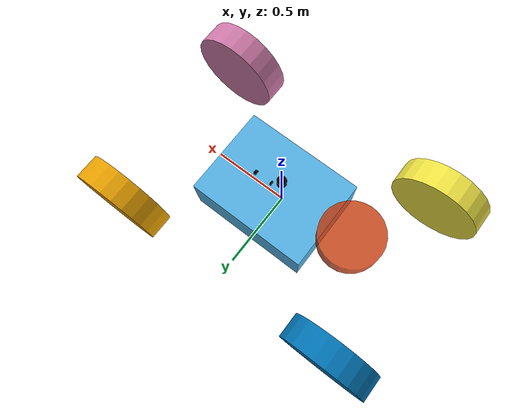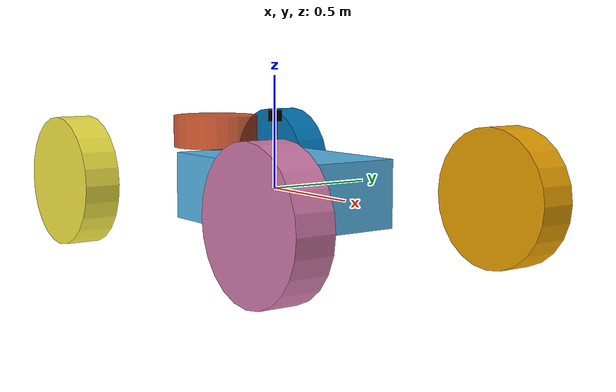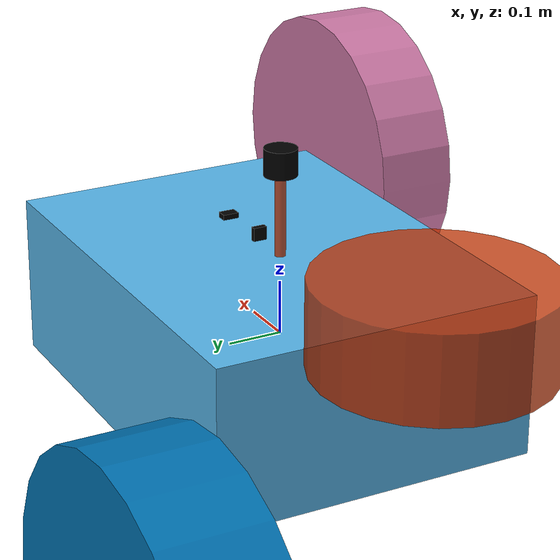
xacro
<!-- 组合小车底盘与摄像头 -->
<robot name="$(arg robot_name)" xmlns:xacro="http://wiki.ros.org/xacro">
    <xacro:include filename="inertial_param.urdf.xacro" />
    <xacro:include filename="gazebo_car.urdf.xacro" />
    <xacro:include filename="gazebo_camera.urdf.xacro" />
    <xacro:include filename="gazebo_imu.urdf.xacro" />
    <xacro:include filename="gazebo_laser.urdf.xacro" />
    <xacro:include filename="gazebo_realview.urdf.xacro" />
    <xacro:include filename="gazebo_device.urdf.xacro" />
</robot>

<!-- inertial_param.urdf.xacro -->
<robot name="$(arg robot_name)" xmlns:xacro="http://wiki.ros.org/xacro">
    <!-- Macro for inertia matrix -->
    <xacro:macro name="sphere_inertial_matrix" params="m r">
        <inertial>
            <mass value="${m}" />
            <inertia ixx="${2*m*r*r/5}" ixy="0" ixz="0"
                iyy="${2*m*r*r/5}" iyz="0"
                izz="${2*m*r*r/5}" />
        </inertial>
    </xacro:macro>

    <xacro:macro name="cylinder_inertial_matrix" params="m r h">
        <inertial>
            <mass value="${m}" />
            <inertia ixx="${m*(3*r*r+h*h)/12}" ixy = "0" ixz = "0"
                iyy="${m*(3*r*r+h*h)/12}" iyz = "0"
                izz="${m*r*r/2}" />
        </inertial>
    </xacro:macro>

    <xacro:macro name="Box_inertial_matrix" params="m l w h">
       <inertial>
               <mass value="${m}" />
               <inertia ixx="${m*(h*h + l*l)/12}" ixy = "0" ixz = "0"
                   iyy="${m*(w*w + l*l)/12}" iyz= "0"
                   izz="${m*(w*w + h*h)/12}" />
       </inertial>
   </xacro:macro>
</robot>

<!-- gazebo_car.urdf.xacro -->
<!--
    使用 xacro 优化 URDF 版的小车底盘实现：

    实现思路:
    1.将一些常量、变量封装为 xacro:property
      比如:PI 值、小车底盘半径、离地间距、车轮半径、宽度 ....
    2.使用 宏 封装驱动轮以及支撑轮实现，调用相关宏生成驱动轮与支撑轮

-->

<!-- 根标签，必须声明 xmlns:xacro -->

<robot name="$(arg robot_name)" xmlns:xacro="http://www.ros.org/wiki/xacro">
    <!-- 封装变量、常量 -->
    <xacro:property name="PI" value="3.141"/>
    <!-- 宏:黑色设置 -->
    <material name="black">
        <color rgba="0.0 0.0 0.0 1.0" />
    </material>
    <material name="gray">
        <color rgba="0.0 0.0 0.0 0.5" />
    </material>

  <xacro:property name="PI" value="3.1415926835897931"/>

  <!-- base -->
  <xacro:property name="base_link_length" value="0.8"/>
  <xacro:property name="base_link_width" value="0.6"/>
  <xacro:property name="base_link_height" value="0.3"/>
  <xacro:property name="base_collision_height" value="0.0"/>
  <xacro:property name="base_mass" value="0.5"/>
  <xacro:property name="base_mass_ixx" value="343"/>
  <xacro:property name="base_mass_iyy" value="728"/>
  <xacro:property name="base_mass_izz" value="772"/>

  <!-- rear tyre -->
  <xacro:property name="rear_tyre_x" value="0.8"/>
  <xacro:property name="rear_tyre_y" value="0.6"/>
  <xacro:property name="rear_tyre_r" value="0.3"/>
  <xacro:property name="rear_tyre_length" value="0.165"/>
  <xacro:property name="rear_tyre_mass" value="20"/>
  <xacro:property name="rear_tyre_mass_ixx" value="0.5"/>
  <xacro:property name="rear_tyre_mass_iyy" value="0.9"/>
  <xacro:property name="rear_tyre_mass_izz" value="0.5"/>

  <!-- front tyre -->
  <xacro:property name="front_tyre_x" value="0.8"/>
  <xacro:property name="front_tyre_y" value="0.6"/>
  <xacro:property name="front_tyre_r" value="0.3"/>
  <xacro:property name="front_tyre_length" value="0.165"/>
  <xacro:property name="front_tyre_mass" value="20"/>
  <xacro:property name="front_tyre_mass_ixx" value="0.5"/>
  <xacro:property name="front_tyre_mass_iyy" value="0.9"/>
  <xacro:property name="front_tyre_mass_izz" value="0.5"/>

  <!-- steering -->
  <xacro:property name="str_angle" value="0.6"/>
  <xacro:property name="str_length" value="0.01"/>
  <xacro:property name="str_radius" value="0.1"/>
  <xacro:property name="str_mass" value="5"/>
  <xacro:property name="str_mass_ixx" value="0.012"/>
  <xacro:property name="str_mass_iyy" value="0.025"/>
  <xacro:property name="str_mass_izz" value="0.012"/>

<!--Car Body-->
  <link name="base_footprint">
    <visual>
      <origin xyz="0.0 0.0 0.0" rpy="0 0 0"/>
      <geometry>
        <sphere radius="0.05"/>
      </geometry>
    </visual>
  </link >

  <joint name="baselink2footprint" type="fixed">
    <parent link="base_footprint"/>
    <child link="base_link"/>
    <origin xyz="0 0 ${base_collision_height}" rpy="0 0 0"/>
  </joint>

  <link name="base_link">
    <collision>
      <origin xyz="0 0 ${base_collision_height}" rpy="0 0 0"/>
      <geometry>
        <box size="${base_link_length} ${base_link_width} ${base_link_height}"/>
      </geometry>
    </collision>

    <visual>
      <origin xyz="0.05 0 ${base_collision_height}" rpy="0 0 0"/>
      <geometry>
        <box size="${base_link_length} ${base_link_width} ${base_link_height}"/>
      </geometry>
    </visual>
  </link>

  <joint name="inertial_joint" type="fixed">
    <parent link="base_link"/>
    <child link="main_mass"/>
    <origin xyz="0 0 0" rpy="0 0 0"/>
  </joint>

  <link name="main_mass" type="fixed">
    <inertial>
      <origin xyz="0 0 0" rpy="0 0 0"/>
      <mass value="${base_mass}"/>
      <inertia
        ixx="${base_mass_ixx}"  ixy="0.000000"  ixz="0.000000"
        iyy="${base_mass_iyy}"  iyz="0.000000"
        izz="${base_mass_izz}"/>
    </inertial>
  </link>

  <!--Rear Right Wheel-->
  <joint name="right_back_wheel_joint" type="continuous">
    <parent link="base_link"/>
    <child link="right_back_wheel_link"/>
    <origin xyz="${-rear_tyre_x} ${-rear_tyre_y} 0" rpy="0 0 0"/>
    <axis xyz="0 1 0"/>
    <dynamics damping="0.1"/>
    <limit effort="100000" velocity="10000" />
    <joint_properties damping="0.0" friction="0.0" />
  </joint>

  <link name="right_back_wheel_link">
    <collision>
      <origin xyz="0 0 0" rpy="${PI/2} 0 0"/>
      <geometry>
        <cylinder length="${rear_tyre_length}" radius="${rear_tyre_r}"/>
      </geometry>
    </collision>

    <visual>
      <origin xyz="0 0 0" rpy="${PI/2} 0 0"/>
      <geometry>
        <cylinder length="${rear_tyre_length}" radius="${rear_tyre_r}"/>
      </geometry>
    </visual>
     <xacro:cylinder_inertial_matrix m="${rear_tyre_mass}" r="${rear_tyre_r}" h="${rear_tyre_length}" />
  </link>

  <!--Rear Left Wheel-->
  <joint name="left_back_wheel_joint" type="continuous">
    <parent link="base_link"/>
    <child link="left_back_wheel_link"/>
    <origin xyz="${-rear_tyre_x} ${rear_tyre_y} 0" rpy="0 0 0"/>
    <axis xyz="0 1 0"/>
    <dynamics damping="0.1"/>
    <limit effort="100000" velocity="10000" />
    <joint_properties damping="0.0" friction="0.0" />
  </joint>

  <link name="left_back_wheel_link">
    <collision>
      <origin xyz="0 0 0" rpy="${PI/2} 0 0"/>
      <geometry>
        <cylinder length="${rear_tyre_length}" radius="${rear_tyre_r}"/>
      </geometry>
    </collision>

    <visual>
      <origin xyz="0 0 0" rpy="${PI/2} 0 0"/>
      <geometry>
        <cylinder length="${rear_tyre_length}" radius="${rear_tyre_r}"/>
      </geometry>
    </visual>
    <xacro:cylinder_inertial_matrix m="${rear_tyre_mass}" r="${rear_tyre_r}" h="${rear_tyre_length}" />
  </link>

  <!--Front Right Steering-->
  <joint name="right_front_steering_joint" type="revolute">
    <parent link="base_link"/>
    <child link="right_front_steering_link"/>
    <origin xyz="${front_tyre_x} ${-front_tyre_y} 0" rpy="0 0 0"/>
    <axis xyz="0 0 1"/>
    <limit lower="${-str_angle}" upper="${str_angle}" effort="1000000.0" velocity="10000.0"/>
    <dynamics damping="10.0" friction="0.0"/>
  </joint>

  <link name="right_front_steering_link">
    <visual>
      <origin xyz="0 0 0" rpy="${PI/2} 0 0"/>
      <geometry>
        <cylinder length="${str_length}" radius="${str_radius}"/>
      </geometry>
    </visual>
    <xacro:cylinder_inertial_matrix m="${str_mass}" r="${str_radius}" h="${str_length}" />
  </link>

  <!--Front Right Wheel-->
  <joint name="right_front_wheel_joint" type="continuous">
    <parent link="right_front_steering_link"/>
    <child link="right_front_wheel_link"/>
    <origin xyz="0 0 0" rpy="0 0 0"/>
    <axis xyz="0 1 0"/>
    <dynamics damping="0.1"/>
    <limit effort="1000000" velocity="10000" />
    <joint_properties damping="0.0" friction="0.0" />
  </joint>

  <link name="right_front_wheel_link">
    <collision>
      <origin xyz="0 0 0" rpy="${PI/2} 0 0"/>
      <geometry>
        <cylinder length="${front_tyre_length}" radius="${front_tyre_r}"/>
      </geometry>
    </collision>

    <visual>
      <origin xyz="0 0 0" rpy="${PI/2} 0 0"/>
      <geometry>
        <cylinder length="${front_tyre_length}" radius="${front_tyre_r}"/>
      </geometry>
    </visual>
    <xacro:cylinder_inertial_matrix m="${front_tyre_mass}" r="${front_tyre_r}" h="${front_tyre_length}" />
  </link>

  <!--Front Left Steering-->
  <joint name="left_front_steering_joint" type="revolute">
    <parent link="base_link"/>
    <child link="left_front_steering_link"/>
    <origin xyz="${front_tyre_x} ${front_tyre_y} 0" rpy="0 0 0"/>
    <axis xyz="0 0 1"/>
    <limit lower="${-str_angle}" upper="${str_angle}" effort="1000000.0" velocity="10000.0"/>
    <dynamics damping="10.0" friction="0.0"/>
  </joint>

  <link name="left_front_steering_link">

    <visual>
      <origin xyz="0 0 0" rpy="${PI/2} 0 0"/>
      <geometry>
        <cylinder length="${str_length}" radius="${str_radius}"/>
      </geometry>
    </visual>
     <xacro:cylinder_inertial_matrix m="${str_mass}" r="${str_radius}" h="${str_length}" />
  </link>

  <!--Front Left Wheel-->
  <joint name="left_front_wheel_joint" type="continuous">
    <parent link="left_front_steering_link"/>
    <child link="left_front_wheel_link"/>
    <origin xyz="0 0 0" rpy="0 0 0"/>
    <axis xyz="0 1 0"/>
    <dynamics damping="0.1"/>
    <limit effort="1000000" velocity="10000" />
    <joint_properties damping="0.0" friction="0.0" />
  </joint>

  <link name="left_front_wheel_link">
    <collision>
      <origin xyz="0 0 0" rpy="${PI/2} 0 0"/>
      <geometry>
        <cylinder length="${front_tyre_length}" radius="${front_tyre_r}"/>
      </geometry>
    </collision>

    <visual>
      <origin xyz="0 0 0" rpy="${PI/2} 0 0"/>
      <geometry>
        <cylinder length="${front_tyre_length}" radius="${front_tyre_r}"/>
      </geometry>
    </visual>
     <xacro:cylinder_inertial_matrix m="${front_tyre_mass}" r="${front_tyre_r}" h="${front_tyre_length}" />
  </link>

  <transmission name="right_front_steering_transmission" type="SimpleTransmission">
      <type>transmission_interface/SimpleTransmission</type>
      <joint name="right_front_steering_joint">
        <hardwareInterface>hardware_interface/EffortJointInterface</hardwareInterface>
      </joint>
      <actuator name="right_front_steering_motor">
          <hardwareInterface>hardware_interface/EffortJointInterface</hardwareInterface>
          <mechanicalReduction>1</mechanicalReduction>
      </actuator>
  </transmission>
  <transmission name="left_front_steering_transmission" type="SimpleTransmission">
      <type>transmission_interface/SimpleTransmission</type>
      <joint name="left_front_steering_joint">
        <hardwareInterface>hardware_interface/EffortJointInterface</hardwareInterface>
      </joint>
      <actuator name="left_front_steering_motor">
          <hardwareInterface>hardware_interface/EffortJointInterface</hardwareInterface>
          <mechanicalReduction>1</mechanicalReduction>
      </actuator>
  </transmission>

  <transmission name="left_back_wheel_transmission" type="SimpleTransmission">
        <type>transmission_interface/SimpleTransmission</type>
        <joint name="left_back_wheel_joint">
          <hardwareInterface>hardware_interface/VelocityJointInterface</hardwareInterface>
        </joint>
        <actuator name="left_back_wheel_motor">
        <hardwareInterface>hardware_interface/VelocityJointInterface</hardwareInterface>
        <mechanicalReduction>1</mechanicalReduction>
        </actuator>
  </transmission>
  <transmission name="right_back_wheel_transmission" type="SimpleTransmission">
    <type>transmission_interface/SimpleTransmission</type>
    <joint name="right_back_wheel_joint">
      <hardwareInterface>hardware_interface/VelocityJointInterface</hardwareInterface>
    </joint>
    <actuator name="right_back_wheel_motor">
      <hardwareInterface>hardware_interface/VelocityJointInterface</hardwareInterface>
      <mechanicalReduction>1</mechanicalReduction>
    </actuator>
  </transmission>
      <!-- 控制器 -->
    <gazebo reference="left_front_wheel_joint">
        <mu1 value="2.0"/>
        <mu2 value="2.0"/>
        <kp  value="10000000.0" />
        <kd  value="1.0" />
        <fdir1 value="0 0 1"/>
    </gazebo>

    <gazebo reference="right_front_wheel_joint">
        <mu1 value="2.0"/>
        <mu2 value="2.0"/>
        <kp  value="10000000.0" />
        <kd  value="1.0" />
        <fdir1 value="0 0 1"/>
    <kd>1</kd>
    </gazebo>

    <gazebo reference="base_link">
        <mu1 value="0.0"/>
        <mu2 value="0.0"/>
        <kp  value="10000000.0" />
        <kd  value="1.0" />

    </gazebo>

    <gazebo reference="left_front_steering_joint">
        <mu1 value="2.0"/>
        <mu2 value="2.0"/>
        <kp  value="10000000.0" />
        <kd  value="1.0" />
        <fdir1 value="1 0 0"/>
        <material>Gazebo/Grey</material>
    </gazebo>

    <gazebo reference="left_back_wheel_joint">
        <mu1 value="2.0"/>
        <mu2 value="2.0"/>
        <kp  value="10000000.0" />
        <kd  value="1.0" />
        <fdir1 value="1 0 0"/>
    </gazebo>

    <gazebo reference="right_front_steering_joint">
        <mu1 value="2.0"/>
        <mu2 value="2.0"/>
        <kp  value="10000000.0" />
        <kd  value="1.0" />
        <fdir1 value="1 0 0"/>
        <material>Gazebo/Grey</material>
    </gazebo>

    <gazebo reference="right_back_wheel_joint">
        <mu1 value="2.0"/>
        <mu2 value="2.0"/>
        <kp  value="10000000.0" />
        <kd  value="1.0" />
        <fdir1 value="1 0 0"/>

    </gazebo>

    <gazebo>
    <plugin name="gazebo_ros_control" filename="libgazebo_ros_control.so">
        <robotNamespace>/$(arg robot_name)</robotNamespace>
        <robotParam>robot_description</robotParam>
        <robotSimType>gazebo_ros_control/DefaultRobotHWSim</robotSimType>
        <legacyModeNS>true</legacyModeNS>
    </plugin>
    </gazebo>

    <gazebo>
        <plugin name="joint_state_publisher" filename="libgazebo_ros_joint_state_publisher.so">
            <jointName>left_front_wheel_joint,
                        right_front_wheel_joint,
                        left_front_steering_joint,
                        right_front_steering_joint,
                        left_back_wheel_joint,
                        right_back_wheel_joint
            </jointName>
            <updateRate>50.0</updateRate>
            <robotNamespace>/$(arg robot_name)</robotNamespace>
            <alwaysOn>true</alwaysOn>
        </plugin>
    </gazebo>

</robot>

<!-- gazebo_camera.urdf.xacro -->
<!-- 摄像头相关的 xacro 文件 -->
<robot name="$(arg robot_name)" xmlns:xacro="http://wiki.ros.org/xacro">
    <!-- 摄像头属性 -->
    <xacro:property name="camera_length" value="0.01" /> <!-- 摄像头长度(x) -->
    <xacro:property name="camera_width" value="0.025" /> <!-- 摄像头宽度(y) -->
    <xacro:property name="camera_height" value="0.025" /> <!-- 摄像头高度(z) -->
    <xacro:property name="camera_x" value="0.08" /> <!-- 摄像头安装的x坐标 -->
    <xacro:property name="camera_y" value="0.0" /> <!-- 摄像头安装的y坐标 -->
    <xacro:property name="camera_z" value="${base_link_height / 2 + camera_height / 2}" /> <!-- 摄像头安装的z坐标:底盘高度 / 2 + 摄像头高度 / 2  -->
    <xacro:property name="camera_m" value="0.01" /> <!-- 摄像头安装的z坐标:底盘高度 / 2 + 摄像头高度 / 2  -->

    <!-- 摄像头关节以及link -->
    <link name="camera">
        <visual>
            <geometry>
                <box size="${camera_length} ${camera_width} ${camera_height}" />
            </geometry>
            <origin xyz="0.0 0.0 0.0" rpy="0.0 0.0 0.0" />
            <material name="black" />
        </visual>
        <collision>
            <geometry>
                <box size="${camera_length} ${camera_width} ${camera_height}" />
            </geometry>
            <origin xyz="0.0 0.0 0.0" rpy="0.0 0.0 0.0" />
        </collision>
        <xacro:Box_inertial_matrix m="${camera_m}" l="${camera_length}" w="${camera_width}" h="${camera_height}" />
    </link>

    <joint name="camera2base_link" type="fixed">
        <parent link="base_link" />
        <child link="camera" />
        <origin xyz="${camera_x} ${camera_y} ${camera_z}" />
    </joint>
    <gazebo reference="camera">
        <material>Gazebo/Blue</material>
      </gazebo>
</robot>

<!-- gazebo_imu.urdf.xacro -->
<!-- 摄像头相关的 xacro 文件 -->
<robot name="$(arg robot_name)" xmlns:xacro="http://wiki.ros.org/xacro">
    <!-- 摄像头属性 -->
    <xacro:property name="imu_length" value="0.02" /> <!-- 摄像头长度(x) -->
    <xacro:property name="imu_width" value="0.03" /> <!-- 摄像头宽度(y) -->
    <xacro:property name="imu_height" value="0.01" /> <!-- 摄像头高度(z) -->
    <xacro:property name="imu_x" value="0.2" /> <!-- 摄像头安装的x坐标 -->
    <xacro:property name="imu_y" value="0.0" /> <!-- 摄像头安装的y坐标 -->
    <xacro:property name="imu_z" value="${base_link_height / 2 + imu_height / 2}" /> <!-- 摄像头安装的z坐标:底盘高度 / 2 + 摄像头高度 / 2  -->
    <xacro:property name="imu_m" value="0.01" /> <!-- 摄像头安装的z坐标:底盘高度 / 2 + 摄像头高度 / 2  -->

    <!-- 摄像头关节以及link -->
    <link name="imu">
        <visual>
            <geometry>
                <box size="${imu_length} ${imu_width} ${imu_height}" />
            </geometry>
            <origin xyz="0.0 0.0 0.0" rpy="0.0 0.0 0.0" />
            <material name="black" />
        </visual>
        <collision>
            <geometry>
                <box size="${imu_length} ${imu_width} ${imu_height}" />
            </geometry>
            <origin xyz="0.0 0.0 0.0" rpy="0.0 0.0 0.0" />
        </collision>
        <xacro:Box_inertial_matrix m="${imu_m}" l="${imu_length}" w="${imu_width}" h="${imu_height}" />
    </link>

    <joint name="imu2base_link" type="fixed">
        <parent link="base_link" />
        <child link="imu" />
        <origin xyz="${imu_x} ${imu_y} ${imu_z}" />
    </joint>
    <gazebo reference="imu">
        <material>Gazebo/Blue</material>
      </gazebo>
</robot>

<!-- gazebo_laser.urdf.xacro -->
<!--
    小车底盘添加雷达
-->
<robot name="$(arg robot_name)" xmlns:xacro="http://wiki.ros.org/xacro">

    <!-- 雷达支架 -->
    <xacro:property name="support_length" value="0.15" /> <!-- 支架长度 -->
    <xacro:property name="support_radius" value="0.01" /> <!-- 支架半径 -->
    <xacro:property name="support_x" value="0.0" /> <!-- 支架安装的x坐标 -->
    <xacro:property name="support_y" value="0.0" /> <!-- 支架安装的y坐标 -->
    <xacro:property name="support_z" value="${base_link_height / 2 + support_length / 2}" /> <!-- 支架安装的z坐标:底盘高度 / 2 + 支架高度 / 2  -->
    <xacro:property name="support_m" value="0.02" /> <!-- 支架安装的z坐标:底盘高度 / 2 + 支架高度 / 2  -->

    <link name="support">
        <visual>
            <geometry>
                <cylinder radius="${support_radius}" length="${support_length}" />
            </geometry>
            <origin xyz="0.0 0.0 0.0" rpy="0.0 0.0 0.0" />
            <material name="red">
                <color rgba="0.8 0.2 0.0 0.8" />
            </material>
        </visual>
        <collision>
            <geometry>
                <cylinder radius="${support_radius}" length="${support_length}" />
            </geometry>
            <origin xyz="0.0 0.0 0.0" rpy="0.0 0.0 0.0" />
        </collision>

        <xacro:cylinder_inertial_matrix m="${support_m}" r="${support_radius}" h="${support_length}" />

    </link>

    <joint name="support2base_link" type="fixed">
        <parent link="base_link" />
        <child link="support" />
        <origin xyz="${support_x} ${support_y} ${support_z}" />
    </joint>
    <gazebo reference="support">
        <material>Gazebo/White</material>
    </gazebo>

    <!-- 雷达属性 -->
    <xacro:property name="laser_length" value="0.05" /> <!-- 雷达长度 -->
    <xacro:property name="laser_radius" value="0.03" /> <!-- 雷达半径 -->
    <xacro:property name="laser_x" value="0.0" /> <!-- 雷达安装的x坐标 -->
    <xacro:property name="laser_y" value="0.0" /> <!-- 雷达安装的y坐标 -->
    <xacro:property name="laser_z" value="${support_length / 2 + laser_length / 2}" /> <!-- 雷达安装的z坐标:支架高度 / 2 + 雷达高度 / 2  -->
    <xacro:property name="laser_m" value="0.1" /> <!-- 雷达安装的z坐标:支架高度 / 2 + 雷达高度 / 2  -->

    <!-- 雷达关节以及link -->
    <link name="laser">
        <visual>
            <geometry>
                <cylinder radius="${laser_radius}" length="${laser_length}" />
            </geometry>
            <origin xyz="0.0 0.0 0.0" rpy="0.0 0.0 0.0" />
            <material name="black" />
        </visual>
        <collision>
            <geometry>
                <cylinder radius="${laser_radius}" length="${laser_length}" />
            </geometry>
            <origin xyz="0.0 0.0 0.0" rpy="0.0 0.0 0.0" />
        </collision>
        <xacro:cylinder_inertial_matrix m="${laser_m}" r="${laser_radius}" h="${laser_length}" />

    </link>

    <joint name="laser2support" type="fixed">
        <parent link="support" />
        <child link="laser" />
        <origin xyz="${laser_x} ${laser_y} ${laser_z}" />
    </joint>

    <gazebo reference="laser">
        <material>Gazebo/Black</material>
    </gazebo>
</robot>

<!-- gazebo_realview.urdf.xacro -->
<!--
    小车底盘添加雷达
-->
<robot name="$(arg robot_name)" xmlns:xacro="http://wiki.ros.org/xacro">

    <!-- 雷达支架 -->
    <xacro:property name="realsence_length" value="0.15" /> <!-- 支架长度 -->
    <xacro:property name="realsence_radius" value="0.2" /> <!-- 支架半径 -->
    <xacro:property name="realsence_x" value="-0.5" /> <!-- 支架安装的x坐标 -->
    <xacro:property name="realsence_y" value="0.0" /> <!-- 支架安装的y坐标 -->
    <xacro:property name="realsence_z" value="${base_link_height / 2 + realsence_length / 2}" /> <!-- 支架安装的z坐标:底盘高度 / 2 + 支架高度 / 2  -->
    <xacro:property name="realsence_m" value="0.02" /> <!-- 支架安装的z坐标:底盘高度 / 2 + 支架高度 / 2  -->

    <link name="real_view">
        <visual>
            <geometry>
                <cylinder radius="${realsence_radius}" length="${realsence_length}" />
            </geometry>
            <origin xyz="0.0 0.0 0.0" rpy="0.0 0.0 0.0" />
            <material name="red">
                <color rgba="0.8 0.2 0.0 0.8" />
            </material>
        </visual>
        <collision>
            <geometry>
                <cylinder radius="${realsence_radius}" length="${realsence_length}" />
            </geometry>
            <origin xyz="0.0 0.0 0.0" rpy="0.0 0.0 0.0" />
        </collision>

        <xacro:cylinder_inertial_matrix m="${realsence_m}" r="${realsence_radius}" h="${realsence_length}" />

    </link>

    <joint name="realview_joint" type="fixed">
        <parent link="base_link" />
        <child link="real_view" />
        <origin xyz="${realsence_x} ${realsence_y} ${realsence_z}" />
    </joint>
    <link name="real_view_depth" />

    <joint name="real_view_depth_joint" type="fixed">
            <origin xyz="0 0 0" rpy="-1.5708 0 -1.5708"/>
            <parent link="real_view"/>
            <child link="real_view_depth"/>
    </joint>

    <gazebo reference="real_view">
        <material>Gazebo/Black</material>
    </gazebo>
</robot>
